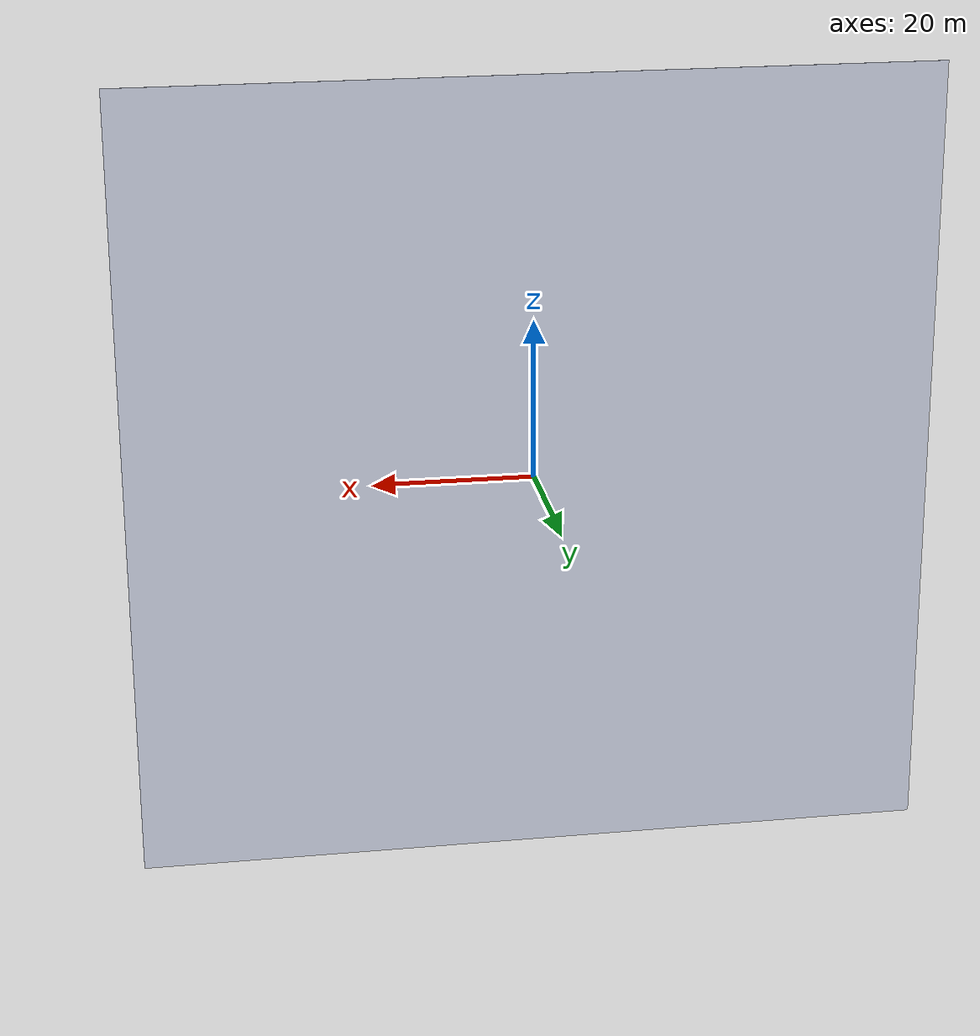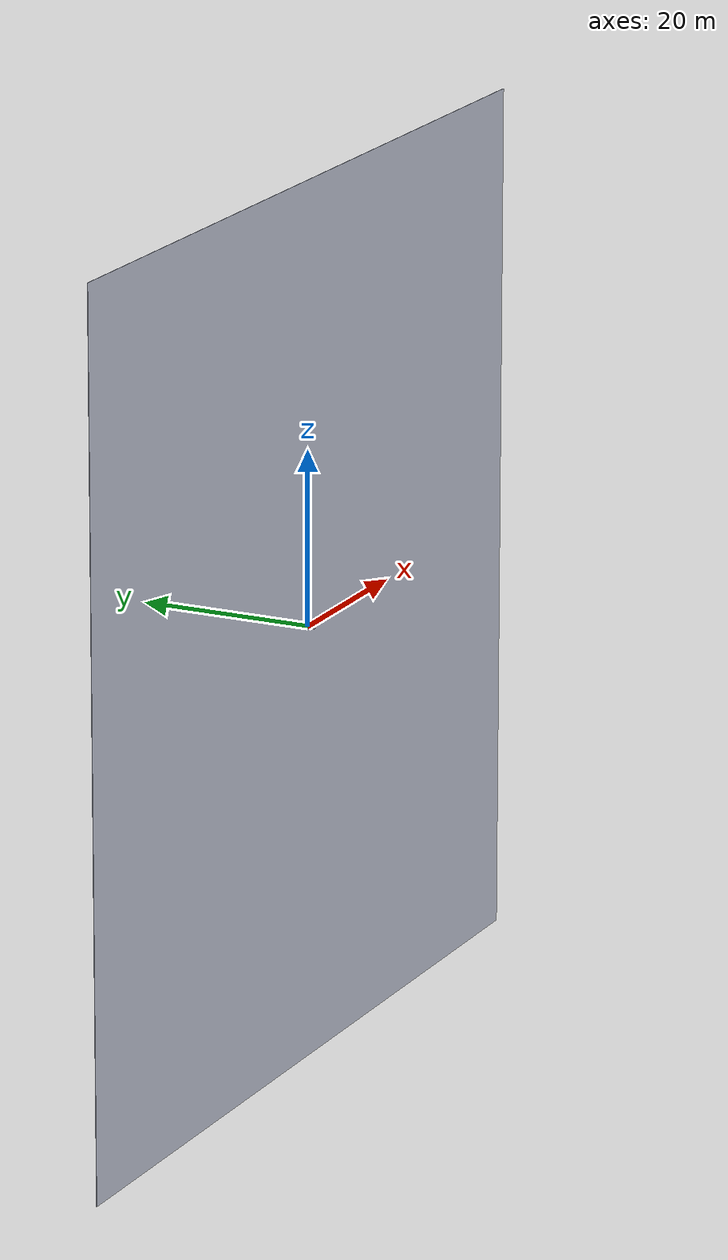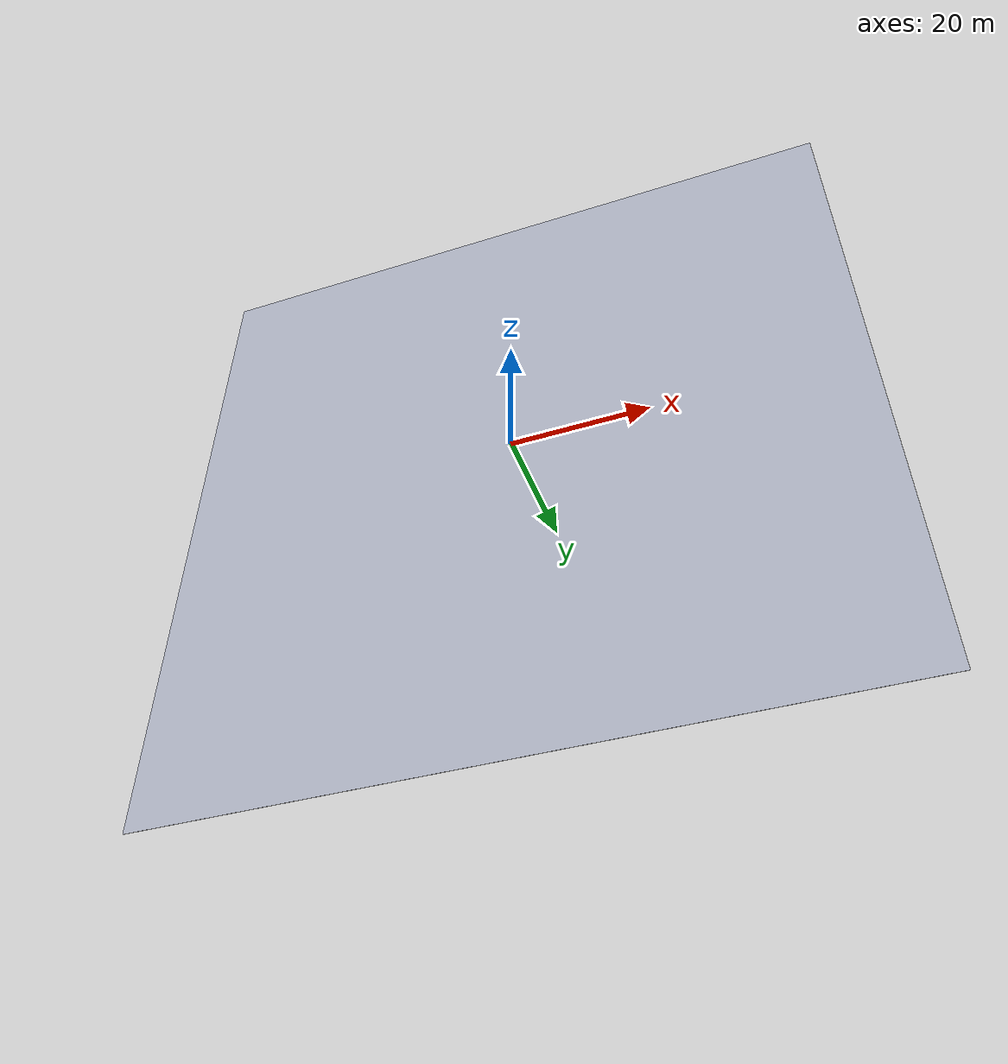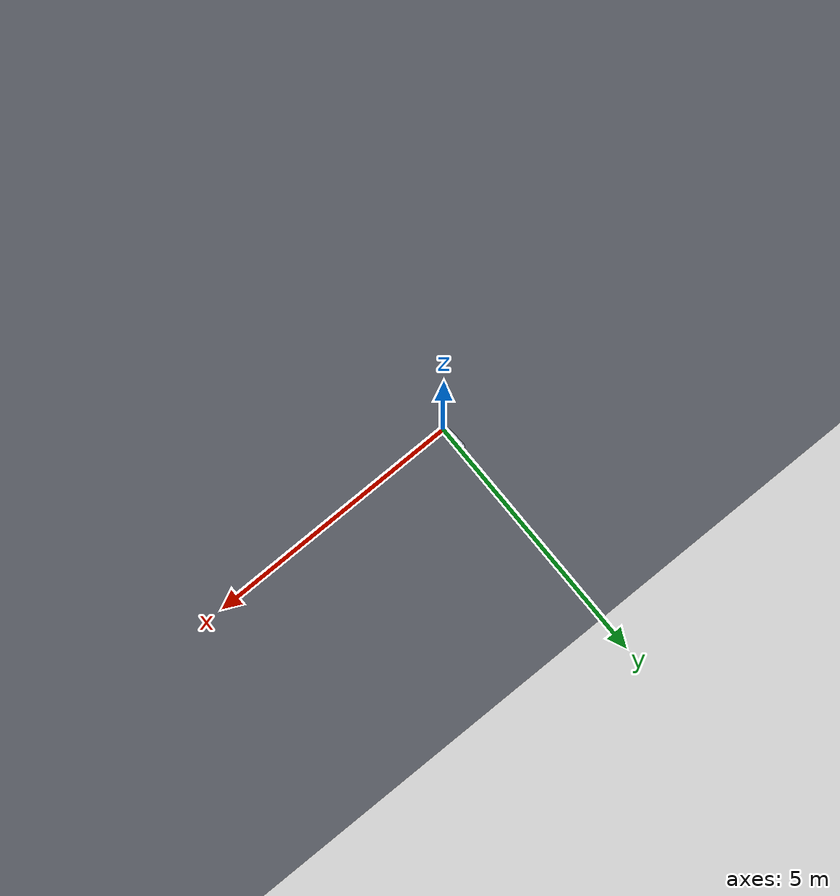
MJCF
<mujoco model="rajagopal_crutch_2d">
  <compiler angle="radian" coordinate="local" inertiafromgeom="false"/>
  <option timestep="0.001" gravity="0 -9.81 0" integrator="implicitfast"/>

  <default>
    <geom rgba="0.72 0.74 0.8 1"/>
    <default class="visual">
      <geom contype="0" conaffinity="0" group="1" density="0"/>
    </default>
    <default class="contact">
      <geom contype="1" conaffinity="2" group="3" friction="0.9 0.005 0.0001" solref="0.01 1" rgba="0.9 0.5 0.2 0.6"/>
    </default>
  </default>

  <visual>
    <headlight diffuse="0.6 0.6 0.6" ambient="0.35 0.35 0.35"/>
    <global azimuth="90" elevation="-10" offwidth="1920" offheight="1080"/>
  </visual>

  <asset>
    <texture name="grid" type="2d" builtin="checker" width="512" height="512" rgb1="0.24 0.26 0.3" rgb2="0.3 0.32 0.36"/>
    <material name="grid" texture="grid" texrepeat="8 8" reflectance="0.05"/>
  </asset>

  <worldbody>
    <light pos="0 3 0" dir="0 -1 0" directional="true"/>
    <camera name="side" pos="0 0 3" xyaxes="1 0 0 0 1 0" mode="trackcom"/>
    <geom name="floor" type="plane" size="50 50 0.1" zaxis="0 1 0" pos="0 0 0" contype="2" conaffinity="1" friction="0.9 0.005 0.0001" solref="0.01 1" material="grid"/>
    <body name="pelvis" pos="0 0 0">
      <joint name="pelvis_tx" type="slide" axis="1 0 0"/>
      <joint name="pelvis_ty" type="slide" axis="0 1 0"/>
      <joint name="pelvis_tilt" type="hinge" axis="0 0 1"/>
      <inertial pos="0 0 0" mass="9.888" diaginertia="0.0874 0.0874 0.0507"/>
      <geom type="capsule" size="0.0482931" fromto="0 0 0 0.0144 -0.0819 0.0773" class="visual"/>
      <geom type="capsule" size="0.0482931" fromto="0 0 0 0.0144 -0.0819 -0.0773" class="visual"/>
      <geom type="capsule" size="0.0482931" fromto="0 0 0 -0.03 0.085 0" class="visual"/>
      <body name="femur_r" pos="0.0144 -0.2485 0.0773">
        <joint name="hip_flexion_r" type="hinge" axis="0 0 1" pos="0 0.1666 0" range="-0.698132 0.698132" damping="0" solreflimit="-500 -25"/>
        <inertial pos="0 0 0" mass="7.81" diaginertia="0.108 0.0283 0.1139"/>
        <geom type="capsule" size="0.0446409" fromto="0 0.1666 0 -0.0079 -0.2332 -0.0027" class="visual"/>
        <body name="tibia_r" pos="0.0002 -0.4168 -0.0012">
          <joint name="knee_angle_r" type="hinge" axis="0 0 1" pos="-0.0081 0.1836 -0.0015" range="-2.0944 0.0872665" damping="0" solreflimit="-500 -25"/>
          <inertial pos="0 0 0" mass="3.113" diaginertia="0.0425 0.0043 0.0431"/>
          <geom type="capsule" size="0.032853" fromto="-0.0081 0.1836 -0.0015 -0.01 -0.2137 0" class="visual"/>
          <body name="calcn_r" pos="0.0456 -0.2223 0">
            <inertial pos="0 0 0" mass="1.134" diaginertia="0.0022 0.0047 0.0053"/>
            <geom type="capsule" size="0.0234632" fromto="-0.0556 0.0086 0 0.0902 -0.0356 0" class="visual"/>
            <geom type="capsule" size="0.0234632" fromto="-0.0556 0.0086 0 -0.085 -0.015 -0.005" class="visual"/>
            <geom type="capsule" size="0.0234632" fromto="-0.0556 0.0086 0 0.085 -0.015 0" class="visual"/>
            <geom name="heel_r" type="sphere" size="0.03" pos="-0.085 -0.015 -0.005" class="contact"/>
            <geom name="toe_r" type="sphere" size="0.03" pos="0.085 -0.015 0" class="contact"/>
            <body name="toes_r" pos="0.1279 -0.0291 0">
              <!-- inertia rebalanced: (0.0001 0.0002 0.001) -> (0.000333333 0.000666667 0.001); largest component preserved -->
              <inertial pos="0 0 0" mass="0.182" diaginertia="0.000333333 0.000666667 0.001"/>
              <geom type="sphere" size="0.0127509" pos="0 0 0" class="visual"/>
            </body>
          </body>
        </body>
      </body>
      <body name="femur_l" pos="0.0144 -0.2499 -0.0773">
        <joint name="hip_flexion_l" type="hinge" axis="0 0 1" pos="0 0.168 0" range="-0.698132 0.698132" damping="0" solreflimit="-500 -25"/>
        <inertial pos="0 0 0" mass="7.81" diaginertia="0.1098 0.0288 0.1157"/>
        <geom type="capsule" size="0.0446409" fromto="0 0.168 0 -0.008 -0.2351 0.0027" class="visual"/>
        <body name="tibia_l" pos="0 -0.4171 0.0012">
          <joint name="knee_angle_l" type="hinge" axis="0 0 1" pos="-0.008 0.182 0.0015" range="-2.0944 0.0872665" damping="0" solreflimit="-500 -25"/>
          <inertial pos="0 0 0" mass="3.113" diaginertia="0.0418 0.0042 0.0424"/>
          <geom type="capsule" size="0.032853" fromto="-0.008 0.182 0.0015 -0.0099 -0.2119 0" class="visual"/>
          <body name="calcn_l" pos="0.0437 -0.2211 0">
            <inertial pos="0 0 0" mass="1.134" diaginertia="0.0021 0.0046 0.0052"/>
            <geom type="capsule" size="0.0234632" fromto="-0.0536 0.0092 0 0.0888 -0.0349 0" class="visual"/>
            <geom type="capsule" size="0.0234632" fromto="-0.0536 0.0092 0 -0.085 -0.015 0.005" class="visual"/>
            <geom type="capsule" size="0.0234632" fromto="-0.0536 0.0092 0 0.085 -0.015 0" class="visual"/>
            <geom name="heel_l" type="sphere" size="0.03" pos="-0.085 -0.015 0.005" class="contact"/>
            <geom name="toe_l" type="sphere" size="0.03" pos="0.085 -0.015 0" class="contact"/>
            <body name="toes_l" pos="0.1258 -0.0285 0">
              <!-- inertia rebalanced: (0.0001 0.0002 0.001) -> (0.000333333 0.000666667 0.001); largest component preserved -->
              <inertial pos="0 0 0" mass="0.182" diaginertia="0.000333333 0.000666667 0.001"/>
              <geom type="sphere" size="0.0127509" pos="0 0 0" class="visual"/>
            </body>
          </body>
        </body>
      </body>
      <body name="torso" pos="-0.06 0.405 0">
        <joint name="lumbar_extension" type="hinge" axis="0 0 1" pos="0.03 -0.32 0" range="-1.5708 1.5708" damping="0" solreflimit="-500 -25"/>
        <inertial pos="0 0 0" mass="22.524" diaginertia="1.238 0.634 1.202"/>
        <geom type="capsule" size="0.0635425" fromto="0.03 -0.32 0 0.0332 0.0515 0.17" class="visual"/>
        <geom type="capsule" size="0.0635425" fromto="0.03 -0.32 0 0.0332 0.0515 -0.17" class="visual"/>
        <body name="humerus_r" pos="0.0332 -0.113 0.17">
          <joint name="arm_flex_r" type="hinge" axis="0 0 1" pos="0 0.1645 0" range="-1.5708 1.5708" damping="5" solreflimit="-500 -25"/>
          <inertial pos="0 0 0" mass="1.707" diaginertia="0.01003 0.00346 0.01126"/>
          <geom type="capsule" size="0.0268902" fromto="0 0.1645 0 0.0131 -0.1218 0" class="visual"/>
          <body name="forearm_r" pos="0.0061 -0.3008 0">
            <joint name="elbow_flex_r" type="hinge" axis="0 0 1" pos="0.007 0.179 0" range="0 2.61799" damping="5" solreflimit="-500 -25"/>
            <!-- inertia rebalanced: (0.01 0.002 0.021) -> (0.0175 0.0035 0.021); largest component preserved -->
            <inertial pos="0 0 0" mass="1.404" diaginertia="0.0175 0.0035 0.021"/>
            <geom type="capsule" size="0.0251945" fromto="0.007 0.179 0 0.0044 0.1083 0.0041" class="visual"/>
            <body name="Crutch_r" pos="0.0044 -0.1936 0.0041">
              <inertial pos="0 0 0" mass="0.613" diaginertia="0.0496 0.001 0.0496"/>
              <geom type="capsule" size="0.0191133" fromto="0 0.3019 0 0.0087 -0.6408 0" class="visual"/>
              <geom name="crutch_tip_r" type="sphere" size="0.032" pos="0.0087 -0.6408 0" class="contact"/>
            </body>
          </body>
        </body>
        <body name="humerus_l" pos="0.0332 -0.113 -0.17">
          <joint name="arm_flex_l" type="hinge" axis="0 0 1" pos="0 0.1645 0" range="-1.5708 1.5708" damping="5" solreflimit="-500 -25"/>
          <inertial pos="0 0 0" mass="1.707" diaginertia="0.01003 0.00346 0.01126"/>
          <geom type="capsule" size="0.0268902" fromto="0 0.1645 0 0.0131 -0.1218 0" class="visual"/>
          <body name="forearm_l" pos="0.0061 -0.3008 0">
            <joint name="elbow_flex_l" type="hinge" axis="0 0 1" pos="0.007 0.179 0" range="0 2.61799" damping="5" solreflimit="-500 -25"/>
            <!-- inertia rebalanced: (0.01 0.002 0.021) -> (0.0175 0.0035 0.021); largest component preserved -->
            <inertial pos="0 0 0" mass="1.404" diaginertia="0.0175 0.0035 0.021"/>
            <geom type="capsule" size="0.0251945" fromto="0.007 0.179 0 0.0044 0.1083 -0.0041" class="visual"/>
            <body name="Crutch_l" pos="0.0044 -0.1924 -0.0041">
              <inertial pos="0 0 0" mass="0.613" diaginertia="0.0492 0.001 0.0492"/>
              <geom type="capsule" size="0.0191133" fromto="0 0.3007 0 0.0087 -0.6408 0" class="visual"/>
              <geom name="crutch_tip_l" type="sphere" size="0.032" pos="0.0087 -0.6408 0" class="contact"/>
            </body>
          </body>
        </body>
      </body>
    </body>
  </worldbody>

  <actuator>
    <motor name="lumbar_extension" joint="lumbar_extension" gear="1" ctrllimited="true" ctrlrange="-1000 1000"/>
    <motor name="hip_flexion_r" joint="hip_flexion_r" gear="1" ctrllimited="true" ctrlrange="-1000 1000"/>
    <motor name="knee_angle_r" joint="knee_angle_r" gear="1" ctrllimited="true" ctrlrange="-1000 1000"/>
    <motor name="hip_flexion_l" joint="hip_flexion_l" gear="1" ctrllimited="true" ctrlrange="-1000 1000"/>
    <motor name="knee_angle_l" joint="knee_angle_l" gear="1" ctrllimited="true" ctrlrange="-1000 1000"/>
    <motor name="arm_flex_r" joint="arm_flex_r" gear="1" ctrllimited="true" ctrlrange="-500 500"/>
    <motor name="elbow_flex_r" joint="elbow_flex_r" gear="1" ctrllimited="true" ctrlrange="-300 300"/>
    <motor name="arm_flex_l" joint="arm_flex_l" gear="1" ctrllimited="true" ctrlrange="-500 500"/>
    <motor name="elbow_flex_l" joint="elbow_flex_l" gear="1" ctrllimited="true" ctrlrange="-300 300"/>
  </actuator>

  <keyframe>
    <!-- the .hfd's dof defaults, in MJCF joint order -->
    <key name="neutral" qpos="0 0.94 0 0 0 0 0 -0.05 0.3 0.8 0.3 0.8"/>
  </keyframe>

  <custom>
    <text name="dof_order" data="pelvis_tilt pelvis_tx pelvis_ty lumbar_extension hip_flexion_r knee_angle_r ankle_angle_r mtp_angle_r hip_flexion_l knee_angle_l ankle_angle_l mtp_angle_l arm_flex_r elbow_flex_r arm_flex_l elbow_flex_l"/>
    <text name="locked_dofs" data="ankle_angle_r mtp_angle_r ankle_angle_l mtp_angle_l"/>
  </custom>
</mujoco>
